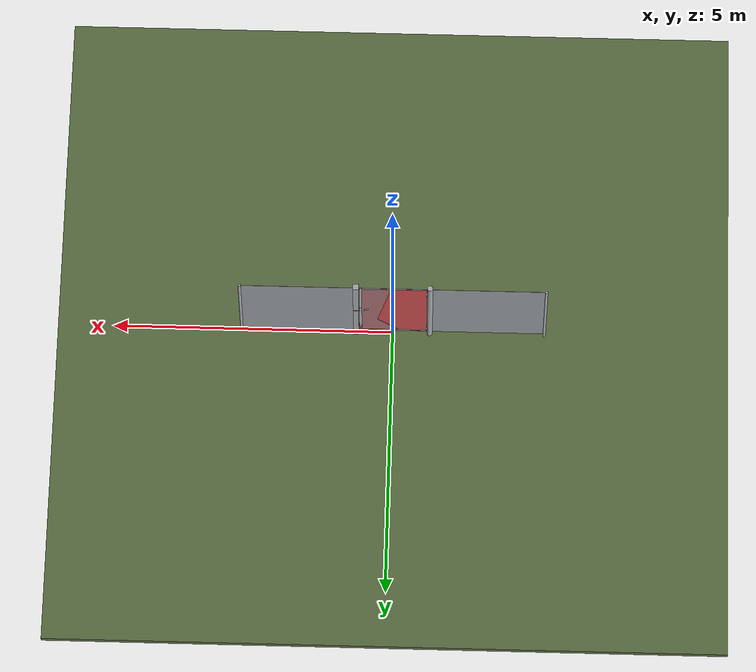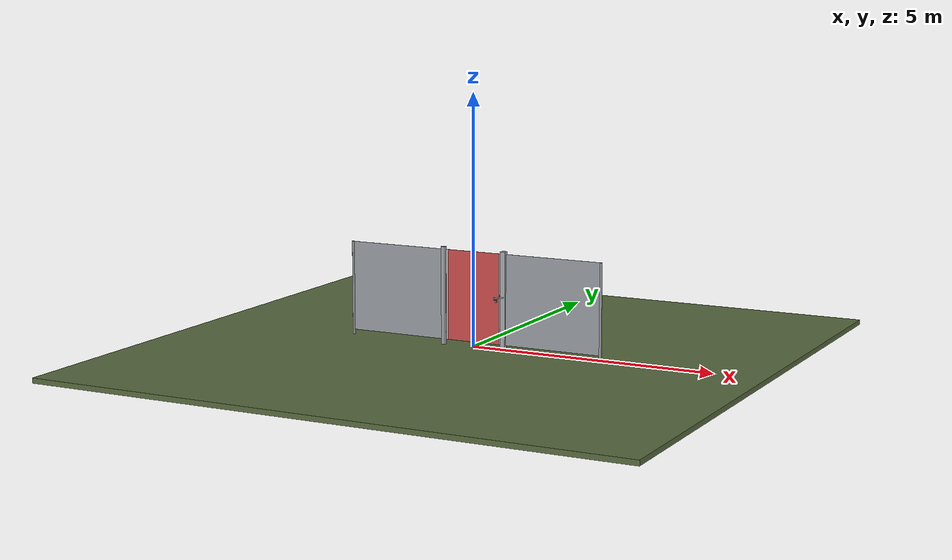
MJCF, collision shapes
<?xml version="1.0" ?>
<mujoco model="db0566_gate_swing_simple">
  <compiler angle="radian" meshdir="../../hardware" texturedir="../../textures" autolimits="true" inertiafromgeom="false"/>
  <option timestep="0.002" integrator="implicitfast" cone="elliptic" impratio="10" noslip_iterations="3">
    <flag multiccd="enable"/>
  </option>
  <size memory="16M"/>
  <default>
    <geom condim="4" solref="0.005 1" solimp="0.95 0.99 0.001"/>
    <joint solreflimit="0.005 1" solimplimit="0.95 0.99 0.001"/>
    <tendon solreflimit="0.005 1"/>
    <equality solref="0.002 1"/>
  </default>
  <visual>
    <headlight ambient="0.4 0.4 0.4" diffuse="0.7 0.7 0.7" specular="0.2 0.2 0.2"/>
    <quality shadowsize="4096"/>
    <map znear="0.01" zfar="60"/>
  </visual>
  <asset>
    <mesh name="strap_hinge_3c1a7c1a5f" file="strap_hinge_3c1a7c1a5f.obj"/>
    <material name="mat_floor" rgba="0.35 0.42 0.25 1" specular="0.2" shininess="0.15" reflectance="0"/>
    <material name="mat_wall" rgba="0.78 0.76 0.7 1" specular="0.2" shininess="0.1" reflectance="0"/>
    <material name="mat_leaf" rgba="0.7 0.71 0.72 1" specular="0.74" shininess="0.5" reflectance="0.36"/>
    <material name="mat_mesh_infill" rgba="0.6 0.62 0.64 0.55" specular="0.68" shininess="0.3" reflectance="0.1"/>
    <material name="mat_hinge" rgba="0.65 0.66 0.68 1" specular="0.74" shininess="0.5" reflectance="0.36"/>
    <material name="mat_op_steel_galvanized" rgba="0.65 0.66 0.68 1" specular="0.74" shininess="0.5" reflectance="0.36"/>
    <material name="mat_padlock" rgba="0.85 0.66 0.3 1" specular="0.8" shininess="0.75" reflectance="0.4"/>
    <material name="mat_frame" rgba="0.65 0.66 0.68 1" specular="0.74" shininess="0.5" reflectance="0.36"/>
    <material name="mat_fence_mesh" rgba="0.6 0.62 0.64 0.5" specular="0.68" shininess="0.3" reflectance="0.1"/>
    <texture name="skybox" type="skybox" builtin="gradient" rgb1="0.6 0.7 0.85" rgb2="0.9 0.92 0.95" width="256" height="256"/>
  </asset>
  <worldbody>
    <light name="sun" pos="1.5 -2.5 4" dir="-0.3 0.5 -0.8" directional="true" diffuse="0.8 0.8 0.8" specular="0.3 0.3 0.3" castshadow="true"/>
    <light name="fill" pos="-1.5 2.5 3" dir="0.3 -0.5 -0.7" directional="true" diffuse="0.35 0.35 0.4" castshadow="false"/>
    <camera name="robot_view" pos="0 -2.33125 1.56275" xyaxes="1 0 0 0 0.26963 0.962964" fovy="52"/>
    <camera name="far_view" pos="0 2.33125 1.56275" xyaxes="-1 0 0 0 -0.26963 0.962964" fovy="52"/>
    <camera name="iso" pos="1.77175 -1.95825 1.93575" xyaxes="0.741536 0.670913 0 -0.242917 0.268487 0.932151" fovy="46"/>
    <camera name="detail_handle" pos="0.766 -0.8135 1.385" xyaxes="0.97561 0.219512 0 -0.070934 0.315262 0.94635" fovy="38"/>
    <geom name="floor" type="box" size="6 6 0.05" pos="0 0 -0.05" material="mat_floor" group="0" contype="1" conaffinity="1" friction="0.8 0.005 0.0001" density="2400"/>
    <geom name="hinge_pintle_0" type="cylinder" size="0.008 0.02" pos="-0.603 0.05 0.224" material="mat_hinge" group="1" contype="0" conaffinity="0" density="7850"/>
    <geom name="hinge_pintle_1" type="cylinder" size="0.008 0.02" pos="-0.603 0.05 1.724" material="mat_hinge" group="1" contype="0" conaffinity="0" density="7850"/>
    <geom name="post_hinge" type="cylinder" size="0.05 0.975" pos="-0.656 0 0.975" material="mat_frame" group="0" contype="1" conaffinity="1" friction="0.6 0.005 0.0001" density="800"/>
    <geom name="post_latch" type="box" size="0.05 0.05 0.975" pos="0.656 0 0.975" material="mat_frame" group="0" contype="1" conaffinity="1" friction="0.6 0.005 0.0001" density="800"/>
    <geom name="gate_stop" type="box" size="0.02 0.012 0.06" pos="0.586 -0.0135 0.35" material="mat_frame" group="0" contype="1" conaffinity="1" friction="0.6 0.005 0.0001" density="800"/>
    <geom name="fence_l" type="box" size="1 0.002 0.9" pos="-1.706 0 1" material="mat_fence_mesh" group="0" contype="1" conaffinity="1" friction="0.6 0.005 0.0001" density="100"/>
    <geom name="fence_post_l" type="cylinder" size="0.025 0.95" pos="-2.706 0 0.95" material="mat_frame" group="0" contype="1" conaffinity="1" friction="0.6 0.005 0.0001" density="7850"/>
    <geom name="fence_r" type="box" size="1 0.002 0.9" pos="1.706 0 1" material="mat_fence_mesh" group="0" contype="1" conaffinity="1" friction="0.6 0.005 0.0001" density="100"/>
    <geom name="fence_post_r" type="cylinder" size="0.025 0.95" pos="2.706 0 0.95" material="mat_frame" group="0" contype="1" conaffinity="1" friction="0.6 0.005 0.0001" density="7850"/>
    <geom name="gate_stop_strap_0" type="box" size="0.0505 0.01255 0.048" pos="0.656 -0.01055 0.35" material="mat_frame" group="1" contype="0" conaffinity="0" density="7850"/>
    <site name="approach_point" pos="0 -1.5 0" quat="1 0 0 0" size="0.05" rgba="0.2 0.9 0.2 0.5" group="4"/>
    <site name="goal_point" pos="0 1.5 0" quat="1 0 0 0" size="0.05" rgba="0.2 0.9 0.2 0.5" group="4"/>
    <site name="door_plane_center" pos="0 0 0.91" quat="1 0 0 0" size="0.02" rgba="0.2 0.9 0.2 0.5" group="4"/>
    <body name="leaf" pos="-0.606 0 0">
      <inertial pos="0.51173 0.002639 0.999822" mass="6.924207" quat="0.502082 0.497583 -0.502404 0.497911" diaginertia="1.054101221 2.193316315 3.246313954"/>
      <joint name="leaf_hinge" type="hinge" axis="0 0 1" pos="0.003 0.05 0" limited="true" range="0 0.0015" damping="1.674086" frictionloss="2.892458" stiffness="5" springref="-0.8" armature="0.02"/>
      <geom name="leaf_slab_col" type="box" size="0.6 0.0015 0.9" pos="0.603 0 1" material="mat_leaf" group="3" contype="1" conaffinity="1" rgba="0.8 0.3 0.3 0.25" friction="0.45 0.005 0.0001" density="1"/>
      <geom name="leaf_rail_b" type="box" size="0.6 0.0015 0.0225" pos="0.603 0 0.1225" material="mat_leaf" group="1" contype="0" conaffinity="0" density="1"/>
      <geom name="leaf_rail_t" type="box" size="0.6 0.0015 0.0225" pos="0.603 0 1.8775" material="mat_leaf" group="1" contype="0" conaffinity="0" density="1"/>
      <geom name="leaf_stile_h" type="box" size="0.0225 0.0015 0.9" pos="0.0255 0 1" material="mat_leaf" group="1" contype="0" conaffinity="0" density="1"/>
      <geom name="leaf_stile_l" type="box" size="0.0225 0.0015 0.9" pos="1.1805 0 1" material="mat_leaf" group="1" contype="0" conaffinity="0" density="1"/>
      <geom name="leaf_mesh" type="box" size="0.555 0.0015 0.855" pos="0.603 0 1" material="mat_mesh_infill" group="1" contype="0" conaffinity="0" density="1"/>
      <geom name="hinge_strap_0" type="mesh" mesh="strap_hinge_3c1a7c1a5f" pos="0.003 0.0045 0.25" material="mat_hinge" group="1" contype="0" conaffinity="0" density="7850"/>
      <geom name="hinge_strap_eye_0" type="cylinder" size="0.011 0.012" pos="0.003 0.05 0.25" material="mat_hinge" group="1" contype="0" conaffinity="0" density="7850"/>
      <geom name="hinge_strap_neck_0" type="box" size="0.012 0.02675 0.006" pos="0.003 0.02725 0.25" material="mat_hinge" group="1" contype="0" conaffinity="0" density="7850"/>
      <geom name="hinge_strap_1" type="mesh" mesh="strap_hinge_3c1a7c1a5f" pos="0.003 0.0045 1.75" material="mat_hinge" group="1" contype="0" conaffinity="0" density="7850"/>
      <geom name="hinge_strap_eye_1" type="cylinder" size="0.011 0.012" pos="0.003 0.05 1.75" material="mat_hinge" group="1" contype="0" conaffinity="0" density="7850"/>
      <geom name="hinge_strap_neck_1" type="box" size="0.012 0.02675 0.006" pos="0.003 0.02725 1.75" material="mat_hinge" group="1" contype="0" conaffinity="0" density="7850"/>
      <geom name="leaf_fork_strap_n" type="box" size="0.02 0.002 0.03" pos="1.063 -0.0035 1" material="mat_op_steel_galvanized" group="1" contype="0" conaffinity="0" density="7800"/>
      <geom name="leaf_fork_strap_p" type="box" size="0.02 0.002 0.03" pos="1.063 0.0035 1" material="mat_op_steel_galvanized" group="1" contype="0" conaffinity="0" density="7800"/>
      <geom name="leaf_fork_lug" type="box" size="0.006 0.01075 0.012" pos="1.113 -0.00675 0.976" material="mat_op_steel_galvanized" group="1" contype="0" conaffinity="0" density="7800"/>
      <site name="leaf_edge_mid" pos="1.203 0 0.9" quat="1 0 0 0" size="0.02" rgba="0.2 0.9 0.2 0.5" group="4"/>
      <body name="leaf_fork" pos="1.063 0 1">
        <inertial pos="0.082785 -0.009662 0.001292" mass="0.462593" quat="0.947997 -0.046235 -0.312803 0.03631" diaginertia="0.000619968 0.002227792 0.002347485"/>
        <joint name="leaf_fork_hinge" type="hinge" axis="0 -1 0" limited="true" range="0 0.001" damping="1.722427" frictionloss="0.02" armature="0.0001"/>
        <geom name="leaf_fork_arm" type="box" size="0.069176 0.004 0.012" pos="0.0645 -0.0135 0.025" quat="0.982958 0 -0.183833 0" material="mat_op_steel_galvanized" group="0" contype="1" conaffinity="1" friction="0.6 0.005 0.0001" density="2500"/>
        <geom name="leaf_fork_eye" type="cylinder" size="0.014 0.005" pos="0 -0.0135 0" quat="0.707107 -0.707107 0 0" material="mat_op_steel_galvanized" group="1" contype="0" conaffinity="0" density="2500"/>
        <geom name="leaf_fork_tine_n" type="box" size="0.05 0.003 0.012" pos="0.179 -0.059 0.05" material="mat_op_steel_galvanized" group="0" contype="1" conaffinity="1" friction="0.6 0.005 0.0001" density="2500"/>
        <geom name="leaf_fork_tine_p" type="box" size="0.05 0.003 0.012" pos="0.179 0.059 0.05" material="mat_op_steel_galvanized" group="0" contype="1" conaffinity="1" friction="0.6 0.005 0.0001" density="2500"/>
        <geom name="leaf_fork_bridge" type="box" size="0.004 0.062 0.012" pos="0.129 0 0.05" material="mat_op_steel_galvanized" group="0" contype="1" conaffinity="1" friction="0.6 0.005 0.0001" density="2500"/>
        <geom name="leaf_fork_handle" type="capsule" size="0.006 0.018" pos="0.129 -0.0135 0.08" material="mat_op_steel_galvanized" group="0" contype="1" conaffinity="1" friction="0.7 0.01 0.0001" density="2500"/>
        <geom name="leaf_fork_padlock_shackle" type="capsule" size="0.004 0.016" pos="0.05 -0.0135 0" quat="0.707107 -0.707107 0 0" material="mat_padlock" group="1" contype="0" conaffinity="0" density="7850"/>
        <geom name="leaf_fork_padlock_leg_a" type="capsule" size="0.004 0.012" pos="0.05 -0.0295 -0.012" quat="0 1 0 0" material="mat_padlock" group="1" contype="0" conaffinity="0" density="7850"/>
        <geom name="leaf_fork_padlock_leg_b" type="capsule" size="0.004 0.012" pos="0.05 0.0025 -0.012" quat="0 1 0 0" material="mat_padlock" group="1" contype="0" conaffinity="0" density="7850"/>
        <geom name="leaf_fork_padlock_body" type="box" size="0.022 0.018 0.008" pos="0.05 -0.0135 -0.042" quat="0.5 -0.5 -0.5 0.5" material="mat_padlock" group="0" contype="1" conaffinity="1" friction="0.6 0.005 0.0001" density="7850"/>
        <site name="leaf_fork_grip" pos="0.129 -0.0135 0.105" quat="1 0 0 0" size="0.012" rgba="0.2 0.9 0.2 0.5" group="4"/>
      </body>
    </body>
  </worldbody>
  <sensor>
    <jointpos name="leaf_hinge_pos" joint="leaf_hinge"/>
    <jointvel name="leaf_hinge_vel" joint="leaf_hinge"/>
    <jointpos name="leaf_fork_hinge_pos" joint="leaf_fork_hinge"/>
    <jointvel name="leaf_fork_hinge_vel" joint="leaf_fork_hinge"/>
  </sensor>
</mujoco>
